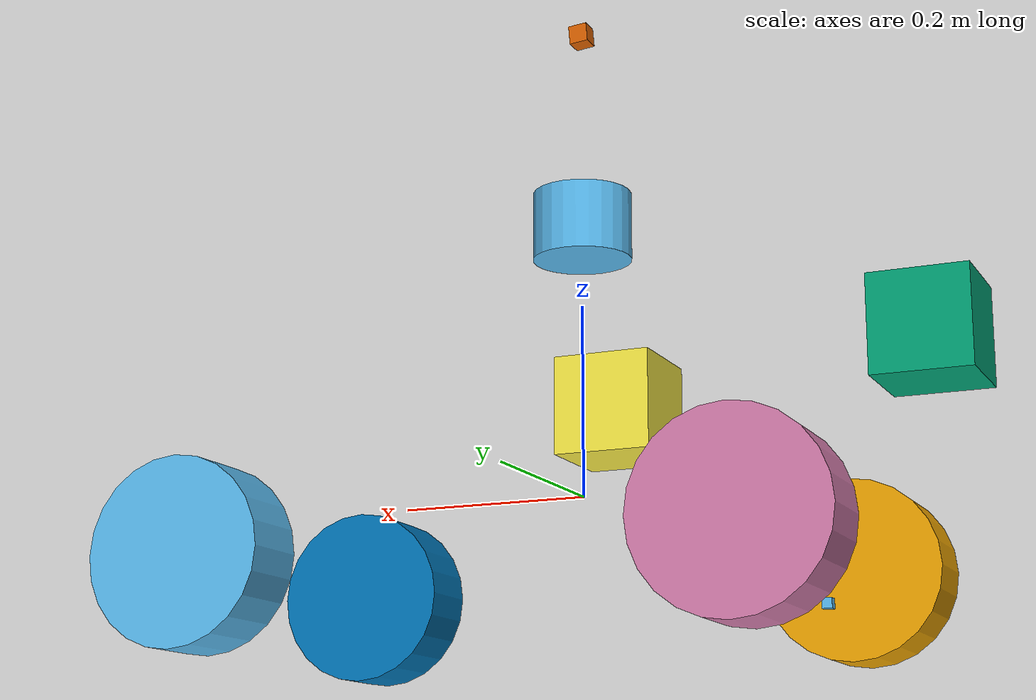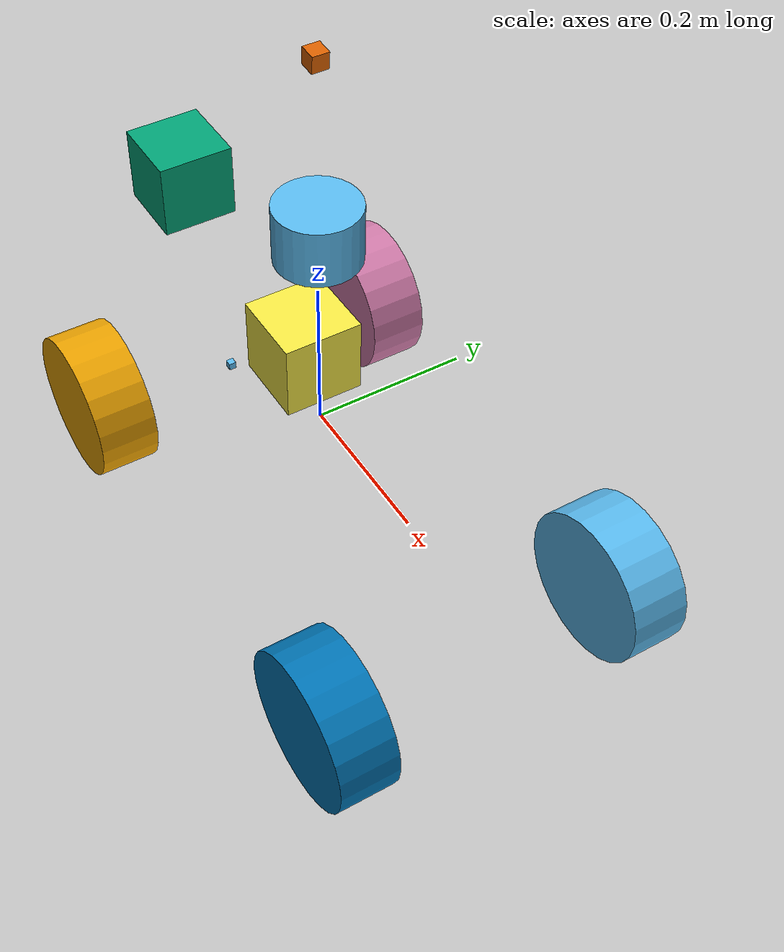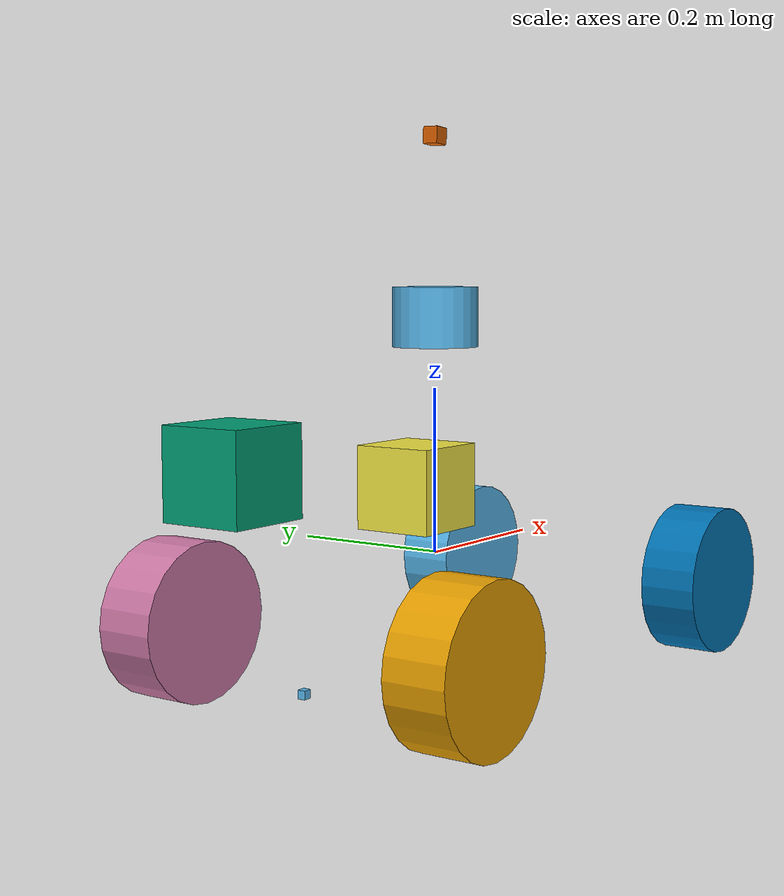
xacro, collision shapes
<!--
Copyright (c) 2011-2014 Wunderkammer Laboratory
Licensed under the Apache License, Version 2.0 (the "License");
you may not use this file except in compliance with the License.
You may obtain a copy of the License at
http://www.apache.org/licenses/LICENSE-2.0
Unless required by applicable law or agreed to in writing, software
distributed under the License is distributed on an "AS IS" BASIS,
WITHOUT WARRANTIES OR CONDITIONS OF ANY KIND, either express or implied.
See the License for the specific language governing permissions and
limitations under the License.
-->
<?xml version="1.0"?>

<robot name="autorally_platform" xmlns:xacro="http://www.ros.org/wiki/xacro">

  <!-- Degree-to-radian conversions -->
  <xacro:property name="degrees_45" value="0.785398163"/>
  <xacro:property name="degrees_5" value="0.08726646259971647"/>
  <xacro:property name="degrees_10" value="0.17453292519943295"/>
  <xacro:property name="degrees_25" value="0.4363"/>
  <xacro:property name="degrees_90" value="1.57079633"/>

  <!-- chassis_length is measured along the x axis, chassis_width
       along the y axis, and chassis_height along the z axis. -->
  <xacro:property name="chassis_length" value="0.90"/>
  <xacro:property name="chassis_width" value="0.25"/>
  <xacro:property name="chassis_height" value="0.25"/>
  <xacro:property name="chassis_mass" value="20.5"/>
  <xacro:property name="chassis_cm_height" value="0.12"/>
  <xacro:property name="chassis_cm_to_rear_shock" value="0.23"/>
  <xacro:property name="chassis_cm_to_front_shock" value="0.34"/>

  <xacro:property name="hub_dia" value="0.024"/>
  <xacro:property name="tire_dia" value="0.19"/>
  <xacro:property name="front_tire_width" value="0.072644"/>
  <xacro:property name="front_wheel_mass" value="0.82"/>
  <xacro:property name="rear_tire_width" value="0.0762"/>
  <xacro:property name="rear_wheel_mass" value="0.89"/>

  <xacro:property name="wheelbase" value="0.570"/>
  <xacro:property name="hex_hub_dist" value="0.4"/>

  <xacro:property name="front_wheel_travel" value="0.1"/>
  <xacro:property name="front_shock_z_offset" value="0.11"/>
  <xacro:property name="rear_wheel_travel" value="0.11"/>
  <xacro:property name="rear_shock_z_offset" value="0.12"/>

  <!-- shock_eff_limit is 2 * ((shock_stroke / 2) * shock_spring_constant) N.
       For shock_spring_constants, refer to
       autoRallyPlatformJointCtrlrParams.yaml for spring's constants -->
  <!-- front shock: 2 * ((0.06 / 2) * 3152.28303) = 189.1369818-->
  <!-- rear shock: 2 * ((0.07 / 2) * 4234.88528273) = 296.441969791-->
  <xacro:property name="front_shock_eff_limit" value="189.1369818"/>
  <xacro:property name="rear_shock_eff_limit" value="296.441969791"/>
  <xacro:property name="shock_vel_limit" value="1000"/>

  <xacro:property name="front_axle_eff_limit" value="2"/>
  <xacro:property name="rear_axle_eff_limit" value="8"/>
  <xacro:property name="axle_vel_limit" value="282.315789474"/>

  <!-- These constants are used to simulate a  Savox SV-0235MG servo operated at
       7.4 V. servo_stall_torque is measured in N m. servo_no_load_speed is
       measured in rad/s. -->
  <!-- produces 486.1 oz-in = 3.432620346181713 n-m of torque -->
  <!-- no load speed 0.13 sec/60 deg -> (1/0.13)*60 deg/sec = 8.05536578 rad/s -->
  <xacro:property name="servo_stall_torque" value="3.432620346181713"/>
  <xacro:property name="servo_no_load_speed" value="8.05536578"/>

  <!-- arg to specify namespace -->
  <xacro:arg name="prefix" default=""/>
  <!-- arg to specify the track-->
  <xacro:arg name="track" default="marietta"/>

  <material name="chassis_mat">
    <color rgba="0.5 0.5 0.5 1"/>
  </material>

  <!-- Null inertial element. This is needed to make the model work with
       Gazebo. -->
  <xacro:macro name="null_inertial">
    <inertial>
      <mass value="0.001"/>
      <inertia ixx="0.001" ixy="0" ixz="0" iyy="0.001" iyz="0" izz="0.001"/>
    </inertial>
  </xacro:macro>

  <xacro:macro name="thick_walled_tube_inertial"
               params="inner_rad outer_rad height mass">
    <inertial>
      <mass value="${mass}"/>
      <inertia ixx="${(1 / 12) * mass * (3 * (inner_rad * inner_rad +
                    outer_rad * outer_rad) + height * height)}"
               ixy="0" ixz="0"
               iyy="0.0224048079"
               iyz="0"
               izz="${mass * (inner_rad * inner_rad +
                    outer_rad * outer_rad) / 2}"/>
    </inertial>
  </xacro:macro>

  <!-- Shock absorbers -->
  <xacro:macro name="front_shock"
               params="lr_prefix fr_prefix lr_reflect fr_reflect child">
    <joint name="${lr_prefix}_${fr_prefix}_shock" type="prismatic">
      <parent link="chassis"/>
      <child link="${child}"/>

      <!-- ${lr_reflect * ((hex_hub_dist / 2) + lr_reflect*(front_tire_width / 2))} -->
      <origin xyz="${fr_reflect * chassis_cm_to_front_shock}
                   ${lr_reflect * ((hex_hub_dist / 2) - 0.01)}
                   ${-chassis_cm_height + front_shock_z_offset/2}"/>
      <axis xyz="0 0 -1"/>
      <limit lower="${-front_wheel_travel / 2}" upper="${front_wheel_travel / 2}"
             effort="${front_shock_eff_limit}" velocity="${shock_vel_limit}"/>
      <dynamics damping="88" friction="0.0001"
                spring_stiffness="3152" spring_reference="0.08"/>
    </joint>
    <transmission name="${lr_prefix}_${fr_prefix}_shock_trans">
      <type>transmission_interface/SimpleTransmission</type>
      <joint name="${lr_prefix}_${fr_prefix}_shock">
        <hardwareInterface>hardware_interface/EffortJointInterface</hardwareInterface>
      </joint>
      <actuator name="${lr_prefix}_${fr_prefix}_shock_act">
        <!-- This hardwareInterface element exists for compatibility
             with ROS Hydro. -->
        <hardwareInterface>hardware_interface/EffortJointInterface</hardwareInterface>
        <mechanicalReduction>1</mechanicalReduction>
      </actuator>
    </transmission>
  </xacro:macro>

  <xacro:macro name="rear_shock"
               params="lr_prefix fr_prefix lr_reflect fr_reflect child">
    <joint name="${lr_prefix}_${fr_prefix}_shock" type="prismatic">
      <parent link="chassis"/>
      <child link="${child}"/>

      <!-- ${lr_reflect * ((hex_hub_dist / 2) + lr_reflect*(front_tire_width / 2))} -->
      <origin xyz="${fr_reflect * chassis_cm_to_rear_shock}
                   ${lr_reflect * ((hex_hub_dist / 2) )}
                   ${-chassis_height/2 + rear_shock_z_offset/2}"/>
      <axis xyz="0 0 -1"/>
      <limit lower="${-rear_wheel_travel / 2}" upper="${rear_wheel_travel / 2}"
             effort="${rear_shock_eff_limit}" velocity="${shock_vel_limit}"/>
      <dynamics damping="88" friction="0.0"/>
    </joint>
    <transmission name="${lr_prefix}_${fr_prefix}_shock_trans">
      <type>transmission_interface/SimpleTransmission</type>
      <joint name="${lr_prefix}_${fr_prefix}_shock">
        <hardwareInterface>hardware_interface/EffortJointInterface</hardwareInterface>
      </joint>
      <actuator name="${lr_prefix}_${fr_prefix}_shock_act">
        <!-- This hardwareInterface element exists for compatibility
             with ROS Hydro. -->
        <hardwareInterface>hardware_interface/EffortJointInterface</hardwareInterface>
        <mechanicalReduction>1</mechanicalReduction>
      </actuator>
    </transmission>
  </xacro:macro>

  <!-- The "wheel" macro defines an axle carrier, axle, and wheel. -->
  <xacro:macro name="wheel" params="lr_prefix fr_prefix lr_reflect tire_width wheel_mass axle_eff_limit wheel_model cant">
    <link name="${lr_prefix}_${fr_prefix}_axle_carrier">
      <xacro:null_inertial/>
    </link>

    <!-- The left and right axles have the same axis so that identical
         rotation values cause the wheels to rotate in the same direction. -->
    <joint name="${lr_prefix}_${fr_prefix}_axle" type="continuous">
      <parent link="${lr_prefix}_${fr_prefix}_axle_carrier"/>
      <child link="${lr_prefix}_${fr_prefix}_wheel"/>
      <origin xyz="0 0 0" rpy="${degrees_90} 0 0"/>
      <axis xyz="0 0 -1"/>
      <limit effort="${axle_eff_limit}" velocity="${axle_vel_limit}"/>
      <dynamics damping="0.001" friction="0.5"/>

    </joint>

    <transmission name="${lr_prefix}_${fr_prefix}_axle_trans">
      <type>transmission_interface/SimpleTransmission</type>
      <joint name="${lr_prefix}_${fr_prefix}_axle">
        <hardwareInterface>hardware_interface/EffortJointInterface</hardwareInterface>
      </joint>
      <actuator name="${lr_prefix}_${fr_prefix}_axle_act">
        <!-- This hardwareInterface element exists for compatibility
             with ROS Hydro. -->
        <hardwareInterface>hardware_interface/EffortJointInterface</hardwareInterface>
        <mechanicalReduction>1</mechanicalReduction>
      </actuator>
    </transmission>

    <link name="${lr_prefix}_${fr_prefix}_wheel">
      <visual>
        <origin xyz="0 0 0"/>
        <geometry>
          <mesh filename="${wheel_model}" />
        </geometry>
      </visual>

      <collision name="collision">
        <origin xyz="0 0 0"/>
        <geometry>
          <cylinder length="${tire_width}" radius="${tire_dia / 2.0}"/>
        </geometry>
      </collision>

      <collision name="material">
        <origin xyz="0 0 0"/>
        <geometry>
          <cylinder length="${tire_width}" radius="${tire_dia / 2.0}"/>
        </geometry>
      </collision>

      <xacro:thick_walled_tube_inertial
          inner_rad="${hub_dia / 2.0}" outer_rad="${tire_dia / 2.0}"
          height="${tire_width}" mass="${wheel_mass}"/>
      <max_contacts>1</max_contacts>
      <surface>
        <contact>
          <ode>
            <soft_cfm>0.000000001</soft_cfm>
            <soft_erp>0.2</soft_erp>
            <kp>1e+10</kp>
            <kd>10</kd>
            <max_vel>0.01</max_vel>
            <min_depth>0.005</min_depth>
          </ode>
        </contact>
      </surface>

    </link>

  </xacro:macro>

  <!-- Front wheel -->
  <xacro:macro name="front_wheel"
               params="lr_prefix fr_prefix lr_reflect fr_reflect tire_width
                       wheel_mass axle_eff_limit">
    <xacro:front_shock lr_prefix="${lr_prefix}" fr_prefix="${fr_prefix}"
                       lr_reflect="${lr_reflect}" fr_reflect="${fr_reflect}"
                       child="${lr_prefix}_steering_link"/>

    <link name="${lr_prefix}_steering_link">
      <xacro:null_inertial/>
    </link>

    <joint name="${lr_prefix}_steering_joint" type="revolute">
      <parent link="${lr_prefix}_steering_link"/>
      <child link="${lr_prefix}_${fr_prefix}_axle_carrier"/>
      <!-- cant the front wheels to improve traction -->
      <axis xyz="0 ${-lr_reflect*0.09950372}  0.99503719"/>
      <limit lower="${-degrees_25}" upper="${degrees_25}"
             effort="${servo_stall_torque}" velocity="${servo_no_load_speed}"/>
    </joint>

    <transmission name="${lr_prefix}_steering_trans">
      <type>transmission_interface/SimpleTransmission</type>
      <joint name="${lr_prefix}_steering_joint">
        <hardwareInterface>hardware_interface/EffortJointInterface</hardwareInterface>
      </joint>
      <actuator name="${lr_prefix}_steering_act">

        <!-- This hardwareInterface element exists for compatibility
             with ROS Hydro. -->
        <hardwareInterface>hardware_interface/EffortJointInterface</hardwareInterface>
        <mechanicalReduction>1</mechanicalReduction>
      </actuator>
    </transmission>

    <xacro:wheel lr_prefix="${lr_prefix}" fr_prefix="${fr_prefix}"
                 lr_reflect="${lr_reflect}" tire_width="${tire_width}"
                 wheel_mass="${wheel_mass}"
                 axle_eff_limit="${axle_eff_limit}"
                 wheel_model="package://autorally_description/urdf/cad/autoRallyPlatformFrontWheelTextured.dae"
                 cant="0.05"/>
  </xacro:macro>

  <!-- Rear wheel -->
  <xacro:macro name="rear_wheel"
               params="lr_prefix fr_prefix lr_reflect fr_reflect tire_width
                       wheel_mass axle_eff_limit">
    <xacro:rear_shock lr_prefix="${lr_prefix}" fr_prefix="${fr_prefix}"
                 lr_reflect="${lr_reflect}" fr_reflect="${fr_reflect}"
                 child="${lr_prefix}_${fr_prefix}_axle_carrier"/>
    <xacro:wheel lr_prefix="${lr_prefix}" fr_prefix="${fr_prefix}"
                 lr_reflect="${lr_reflect}" tire_width="${tire_width}"
                 wheel_mass="${wheel_mass}"
                 axle_eff_limit="${axle_eff_limit}"
                 wheel_model="package://autorally_description/urdf/cad/autoRallyPlatformRearWheelTextured.dae"
                 cant="-0.03"/>
  </xacro:macro>

  <!-- base_link must have geometry so that its axes can be displayed in
       rviz. -->
  <link name="base_link">
    <visual>
      <geometry>
        <box size="0.01 0.01 0.01"/>
      </geometry>
      <material name="chassis_mat"/>
    </visual>
  </link>

  <gazebo reference="base_link">
    <material>Gazebo/Grey</material>
  </gazebo>

  <!-- Chassis -->
  <link name="chassis">
    <visual>
      <origin xyz="${-chassis_length/2 + 0.15} 0 ${-chassis_cm_height}"
              rpy="0 0 0"/>

      <geometry>
        <mesh filename="package://autorally_description/urdf/cad/Vehicle_Texture.dae" scale="1 1 1" />
      </geometry>
    </visual>

    <collision>
      <origin xyz="${-chassis_length/2 + 0.2} 0 ${-chassis_cm_height}"
              rpy="0 0 0"/>

      <geometry>
        <box size="0.01 0.01 0.01"/>
      </geometry>
    </collision>

    <inertial>
      <mass value="${chassis_mass}"/>
      <inertia ixx="0.1067"
               ixy="0" ixz="0"
               iyy="1.3837"
               iyz="0"
               izz="0.1067"/>
    </inertial>

  </link>
  <gazebo reference="chassis">
    <mu1>0.2</mu1>
    <mu2>0.2</mu2>
  </gazebo>

  <joint name="base_link_to_chasis" type="fixed">
    <axis xyz="0 -1 -1" />
    <parent link="base_link"/>
    <child link="chassis"/>
  </joint>

  <link name="gps_link">
    <collision>
      <geometry>
        <box size="0.1 0.1 0.1"/>
      </geometry>
    </collision>
    <inertial>
      <mass value="1e-5" />
      <origin xyz="0 0 0" rpy="0 0 0"/>
      <inertia ixx="1e-6" ixy="0" ixz="0" iyy="1e-6" iyz="0" izz="1e-6" />
    </inertial>
  </link>

  <joint name="gps_joint" type="fixed">
    <origin xyz="-0.36 0 0.1359" rpy="0 0 0"/>
    <parent link="base_link"/>
    <child link="gps_link"/>
  </joint>

  <link name="imu_link">
    <collision>
      <origin xyz="0 0 0" rpy="0 0 0"/>
      <geometry>
        <box size="0.1 0.1 0.1"/>
      </geometry>
    </collision>
    <inertial>
      <mass value="1e-5" />
      <origin xyz="0 0 0" rpy="0 0 0"/>
      <inertia ixx="1e-6" ixy="0" ixz="0" iyy="1e-6" iyz="0" izz="1e-6" />
    </inertial>
  </link>

  <joint name="imu_joint" type="fixed">
    <origin xyz="-0.039 0 0.0859" rpy="0 0 0"/>
    <parent link="base_link"/>
    <child link="imu_link"/>
  </joint>

  <joint name="camera_joint" type="fixed">
    <axis xyz="0 0 -1" />
    <origin xyz="0.0 0 0.50" rpy="0 ${degrees_5} 0"/>
    <parent link="base_link"/>
    <child link="camera_link"/>
  </joint>

 <link name="odom_ground_truth">
    <collision>
      <geometry>
        <box size="0.1 0.1 0.1"/>
      </geometry>
    </collision>
    <inertial>
      <mass value="1e-5" />
      <origin xyz="0 0 0" rpy="0 0 0"/>
      <inertia ixx="1e-6" ixy="0" ixz="0" iyy="1e-6" iyz="0" izz="1e-6" />
    </inertial>
  </link>

  <joint name="odom_ground_truth_joint" type="fixed">
    <axis xyz="0 0 0" />
    <origin xyz="-0.039 0 0.0859" rpy="0 0 0"/>
    <parent link="base_link"/>
    <child link="odom_ground_truth"/>
  </joint>

  <!-- 3D_Lidar -->

  <!-- Camera -->
  <link name="camera_link">
    <collision>
      <origin xyz="0 0 0" rpy="0 0 0"/>
      <geometry>
    <box size="0.02 0.02 0.02"/>
      </geometry>
    </collision>
    <inertial>
      <mass value="1e-5" />
      <origin xyz="0 0 0" rpy="0 0 0"/>
      <inertia ixx="1e-6" ixy="0" ixz="0" iyy="1e-6" iyz="0" izz="1e-6" />
    </inertial>

  </link>

<joint name="camera_optical_joint" type="fixed">
    <!-- these values have to be these values otherwise the gazebo camera
        image won't be aligned properly with the frame it is supposedly
        originating from -->
    <origin xyz="0 0 0" rpy="${-pi/2} 0 ${-pi/2}"/>
    <parent link="camera_link"/>
    <child link="left_camera_optical_frame"/>
  </joint>

  <link name="left_camera_optical_frame">
  </link>

  <!-- camera -->
  <gazebo reference="camera_link">
    <sensor type="multicamera" name="stereo_camera">
      <update_rate>30.0</update_rate>
      <camera name="left">
        <pose>0 0.00 0 0 0 0</pose>
        <horizontal_fov>1.3962634</horizontal_fov>
        <image>
          <width>640</width>
          <height>512</height>
          <format>R8G8B8</format>
        </image>
        <clip>
          <near>0.02</near>
          <far>300</far>
        </clip>
        <noise>
          <type>gaussian</type>
          <mean>0.0</mean>
          <stddev>0.009</stddev>
        </noise>
      </camera>
      <camera name="right">
        <pose>0.02 -0.07 0 0 0 0</pose>
        <horizontal_fov>1.3962634</horizontal_fov>
        <image>
          <width>640</width>
          <height>512</height>
          <format>R8G8B8</format>
        </image>
        <clip>
          <near>0.02</near>
          <far>300</far>
        </clip>
        <noise>
          <type>gaussian</type>
          <mean>0.0</mean>
          <stddev>0.009</stddev>
        </noise>
      </camera>
      <plugin name="stereo_camera_controller" filename="libgazebo_ros_multicamera.so">
        <robotNamespace>$(arg prefix)</robotNamespace>
        <alwaysOn>true</alwaysOn>
        <updateRate>30.0</updateRate>
        <cameraName>camera</cameraName>
        <imageTopicName>image_raw</imageTopicName>
        <cameraInfoTopicName>camera_info</cameraInfoTopicName>
        <frameName>left_camera_optical_frame</frameName>
        <hackBaseline>0.14</hackBaseline>
      </plugin>
      </sensor>
  </gazebo>

 <gazebo reference="camera_link">
      <sensor name="depth_camera" type="depth">
    <update_rate>20</update_rate>
    <camera>
      <horizontal_fov>1.3962634</horizontal_fov>
      <image>
        <width>640</width>
        <height>480</height>
        <format>R8G8B8</format>
      </image>
      <clip>
        <near>0.05</near>
        <far>16</far>
      </clip>
    </camera>
    <plugin name="depth_controller" filename="libgazebo_ros_openni_kinect.so">
      <baseline>0.2</baseline>
      <alwaysOn>true</alwaysOn>
      <updateRate>1.0</updateRate>
      <cameraName>camera_link</cameraName>
      <imageTopicName>/camera_name/color/image_raw</imageTopicName>
      <cameraInfoTopicName>/camera_name/color/camera_info</cameraInfoTopicName>
      <depthImageTopicName>/camera_name/depth/image_raw</depthImageTopicName>
      <depthImageInfoTopicName>/depth/camera_info</depthImageInfoTopicName>
      <pointCloudTopicName>/depth/points</pointCloudTopicName>
      <frameName>left_camera_optical_frame</frameName>
      <pointCloudCutoff>0.05</pointCloudCutoff>
      <pointCloudCutoffMax>16.0</pointCloudCutoffMax>
      <distortionK1>-0.1</distortionK1>
      <distortionK2>0.2</distortionK2>
      <distortionK3>0.00000001</distortionK3>
      <distortionT1>0.00000001</distortionT1>
      <distortionT2>0.00000001</distortionT2>
      <CxPrime>0</CxPrime>
      <Cx>320.5</Cx>
      <Cy>240.5</Cy>
      <focalLength>381.362467</focalLength>
      <hackBaseline>0</hackBaseline>
    </plugin>
  </sensor>
 </gazebo>

  <!-- Wheels -->
  <xacro:front_wheel lr_prefix="left" fr_prefix="front"
                     lr_reflect="1" fr_reflect="1"
                     tire_width="${front_tire_width}"
                     wheel_mass="${front_wheel_mass}"
                     axle_eff_limit="${front_axle_eff_limit}"/>
  <xacro:front_wheel lr_prefix="right" fr_prefix="front"
                     lr_reflect="-1" fr_reflect="1"
                     tire_width="${front_tire_width}"
                     wheel_mass="${front_wheel_mass}"
                     axle_eff_limit="${front_axle_eff_limit}"/>
  <xacro:rear_wheel lr_prefix="left" fr_prefix="rear"
                    lr_reflect="1" fr_reflect="-1"
                    tire_width="${rear_tire_width}"
                    wheel_mass="${rear_wheel_mass}"
                    axle_eff_limit="${rear_axle_eff_limit}"/>
  <xacro:rear_wheel lr_prefix="right" fr_prefix="rear"
                    lr_reflect="-1" fr_reflect="-1"
                    tire_width="${rear_tire_width}"
                    wheel_mass="${rear_wheel_mass}"
                    axle_eff_limit="${rear_axle_eff_limit}"/>

  <gazebo>
    <plugin name="gazebo_ros_control" filename="libgazebo_ros_control.so">
      <robotNamespace>$(arg prefix)</robotNamespace>
      <robotSimType>gazebo_ros_control/DefaultRobotHWSim</robotSimType>
      <legacyModeNS>true</legacyModeNS>
    </plugin>

    <plugin name="imu" filename="libhector_gazebo_ros_imu.so">
      <robotNamespace>$(arg prefix)</robotNamespace>
      <serviceName>$(arg prefix)/imu/calibrate</serviceName>
      <updateRate>200.0</updateRate>
      <bodyName>imu_link</bodyName>
      <frameId>imu_link</frameId>
      <topicName>imu/imu</topicName>
      <rpyOffset>0 0 0</rpyOffset>
      <xyzOffset>0 0 0</xyzOffset>
      <gaussianNoise>0.00000001</gaussianNoise>
      <accelDrift>0.00000001 0.00000001 0.00000001</accelDrift>
      <accelDriftFrequency>0.00000001 0.00000001 0.00000001</accelDriftFrequency>
      <accelGaussianNoise>0.00000001 0.00000001 0.00000001</accelGaussianNoise>
      <rateDrift>0.0 0.0 0.0</rateDrift>
      <rateDriftFrequency>0.0 0.0 0.0</rateDriftFrequency>
      <rateGaussianNoise>0.0 0.0 0.0</rateGaussianNoise>
      <headingDrift>0.0 0.0 0.0</headingDrift>
      <headingDriftFrequency>0.0 0.0 0.0</headingDriftFrequency>
      <headingGaussianNoise>0.0 0.0 0.0</headingGaussianNoise>
    </plugin>

    <plugin name="gps" filename="libhector_gazebo_ros_gps.so">
      <robotNamespace>$(arg prefix)</robotNamespace>
      <updateRate>20.0</updateRate>
      <bodyName>gps_link</bodyName>
      <frameId>gps_link</frameId>
      <topicName>gpsRoverStatus</topicName>
      <velocityTopicName>fix_velocity</velocityTopicName>
      <xacro:if value="${ '$(arg track)' == 'marietta'}" >
        <referenceLatitude>33.774497</referenceLatitude>
        <referenceLongitude>-84.405001</referenceLongitude>
        <referenceAltitude>309.0</referenceAltitude>
      </xacro:if >
      <xacro:if value="${ '$(arg track)' == 'ccrf'}" >
        <referenceLatitude>33.911071</referenceLatitude>
        <referenceLongitude>-84.530018</referenceLongitude>
        <referenceAltitude>297.607097</referenceAltitude>
      </xacro:if >
      <drift>0.001 0.001 0.001</drift>
      <gaussianNoise>0.0001 0.0001 0.0001</gaussianNoise>
      <velocityDrift>0 0 0</velocityDrift>
      <velocityGaussianNoise>0.005 0.005 0.05</velocityGaussianNoise>
    </plugin>

    <plugin name="p3d_base_controller" filename="libgazebo_ros_p3d.so">
      <alwaysOn>true</alwaysOn>
      <updateRate>200.0</updateRate>
      <bodyName>odom_ground_truth</bodyName>
      <topicName>ground_truth/state_raw</topicName>
      <gaussianNoise>0.00</gaussianNoise>
      <frameName>world</frameName>
      <!-- origin is at spawn location -->
      <xyzOffset>0 8.5 0</xyzOffset>
      <rpyOffset>0 0 0</rpyOffset>
    </plugin>

  </gazebo>

   <xacro:arg name="gpu" default="true"/>
  <xacro:property name="gpu" value="$(arg gpu)" />
  <xacro:arg name="organize_cloud" default="false"/>
  <xacro:property name="organize_cloud" value="$(arg organize_cloud)" />
  <xacro:include filename="$(find velodyne_description)/urdf/VLP-16.urdf.xacro"/>
  <xacro:VLP-16 parent="base_link" name="velodyne" topic="/velodyne_points" organize_cloud="${organize_cloud}" hz="10" lasers="128" samples="55" min_angle="-1.047" max_angle="1.047" gpu="${gpu}">
    <origin xyz="0.0 0 0.25" rpy="0 0 0" />
  </xacro:VLP-16>

</robot>

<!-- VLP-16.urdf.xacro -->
<robot xmlns:xacro="http://www.ros.org/wiki/xacro" name="VLP-16">
  <xacro:property name="M_PI" value="3.1415926535897931" />
  <xacro:macro name="VLP-16" params="*origin is_sim:=true parent:=base_link name:=velodyne tf_prefix:='' topic:=/velodyne_points organize_cloud:=false hz:=10 lasers:=16 samples:=1875 collision_range:=0.3 min_range:=0.0 max_range:=100.0 noise:=0.008 min_angle:=-${M_PI} max_angle:=${M_PI} gpu:=false">

    <joint name="${name}_base_mount_joint" type="fixed">
      <xacro:insert_block name="origin" />
      <parent link="${parent}"/>
      <child link="${name}_base_link"/>
    </joint>

    <link name="${name}_base_link">
      <inertial>
        <mass value="0.83"/>
        <origin xyz="0 0 0.03585"/>
        <inertia ixx="${(0.83 * (3.0*0.0516*0.0516 + 0.0717*0.0717)) / 12.0}" ixy="0" ixz="0"
          iyy="${(0.83 * (3.0*0.0516*0.0516 + 0.0717*0.0717)) / 12.0}" iyz="0"
          izz="${0.5 * 0.83 * (0.0516*0.0516)}"/>
      </inertial>
      <visual>
        <geometry>
          <mesh filename="package://velodyne_description/meshes/VLP16_base_1.dae" />
        </geometry>
      </visual>
      <visual>
        <geometry>
          <mesh filename="package://velodyne_description/meshes/VLP16_base_2.dae" />
        </geometry>
      </visual>
      <collision>
        <origin rpy="0 0 0" xyz="0 0 0.03585"/>
        <geometry>
          <cylinder radius="0.0516" length="0.0717"/>
        </geometry>
      </collision>
    </link>

    <joint name="${name}_base_scan_joint" type="fixed" >
      <origin xyz="0 0 0.0377" rpy="0 0 0" />
      <parent link="${name}_base_link" />
      <child link="${name}"/>
    </joint>

    <link name="${name}">
      <inertial>
        <mass value="0.01"/>
        <origin xyz="0 0 0"/>
        <inertia ixx="1e-7" ixy="0" ixz="0" iyy="1e-7" iyz="0" izz="1e-7"/>
      </inertial>
      <visual>
        <origin xyz="0 0 -0.0377" />
        <geometry>
          <mesh filename="package://velodyne_description/meshes/VLP16_scan.dae" />
        </geometry>
      </visual>
      <collision>
        <geometry>
          <sphere radius="0"/>
        </geometry>
      </collision>
    </link>

    <!-- Gazebo requires the velodyne_gazebo_plugins package -->
    <xacro:if value="${is_sim}">
        <gazebo reference="${name}">
            <xacro:if value="${gpu}">
                <sensor type="gpu_ray" name="${name}-VLP16">
                <pose>0 0 0 0 0 0</pose>
                <visualize>false</visualize>
                <update_rate>${hz}</update_rate>
                <ray>
                    <scan>
                    <horizontal>
                        <samples>${samples}</samples>
                        <resolution>1</resolution>
                        <min_angle>${min_angle}</min_angle>
                        <max_angle>${max_angle}</max_angle>
                    </horizontal>
                    <vertical>
                        <samples>${lasers}</samples>
                        <resolution>1</resolution>
                        <min_angle>-${15.0*M_PI/180.0}</min_angle>
                        <max_angle> ${15.0*M_PI/180.0}</max_angle>
                    </vertical>
                    </scan>
                    <range>
                    <min>${collision_range}</min>
                    <max>${max_range+1}</max>
                    <resolution>0.001</resolution>
                    </range>
                    <noise>
                    <type>gaussian</type>
                    <mean>0.0</mean>
                    <stddev>0.0</stddev>
                    </noise>
                </ray>
                <plugin name="gazebo_ros_laser_controller" filename="libgazebo_ros_velodyne_laser.so">
                    <ros>
                    <namespace>/${name}</namespace>
                    <remapping>~/out:=${topic}</remapping>
                    </ros>
                    <tf_prefix>${tf_prefix}</tf_prefix>
                    <frame_name>${name}</frame_name>
                    <organize_cloud>${organize_cloud}</organize_cloud>
                    <min_range>${min_range}</min_range>
                    <max_range>${max_range}</max_range>
                    <gaussian_noise>${noise}</gaussian_noise>
                </plugin>
                </sensor>
            </xacro:if>
            <xacro:unless value="${gpu}">
                <sensor type="ray" name="${name}-VLP16">
                <pose>0 0 0 0 0 0</pose>
                <visualize>false</visualize>
                <update_rate>${hz}</update_rate>
                <ray>
                    <scan>
                    <horizontal>
                        <samples>${samples}</samples>
                        <resolution>1</resolution>
                        <min_angle>${min_angle}</min_angle>
                        <max_angle>${max_angle}</max_angle>
                    </horizontal>
                    <vertical>
                        <samples>${lasers}</samples>
                        <resolution>1</resolution>
                        <min_angle>-${15.0*M_PI/180.0}</min_angle>
                        <max_angle> ${15.0*M_PI/180.0}</max_angle>
                    </vertical>
                    </scan>
                    <range>
                    <min>${collision_range}</min>
                    <max>${max_range+1}</max>
                    <resolution>0.001</resolution>
                    </range>
                    <noise>
                    <type>gaussian</type>
                    <mean>0.0</mean>
                    <stddev>0.0</stddev>
                    </noise>
                </ray>
                <plugin name="gazebo_ros_laser_controller" filename="libgazebo_ros_velodyne_laser.so">
                    <ros>
                    <namespace>/${name}</namespace>
                    <remapping>~/out:=${topic}</remapping>
                    </ros>
                    <tf_prefix>${tf_prefix}</tf_prefix>
                    <frame_name>${name}</frame_name>
                    <organize_cloud>${organize_cloud}</organize_cloud>
                    <min_range>${min_range}</min_range>
                    <max_range>${max_range}</max_range>
                    <gaussian_noise>${noise}</gaussian_noise>
                </plugin>
                </sensor>
            </xacro:unless>
        </gazebo>
    </xacro:if>

  </xacro:macro>
</robot>
